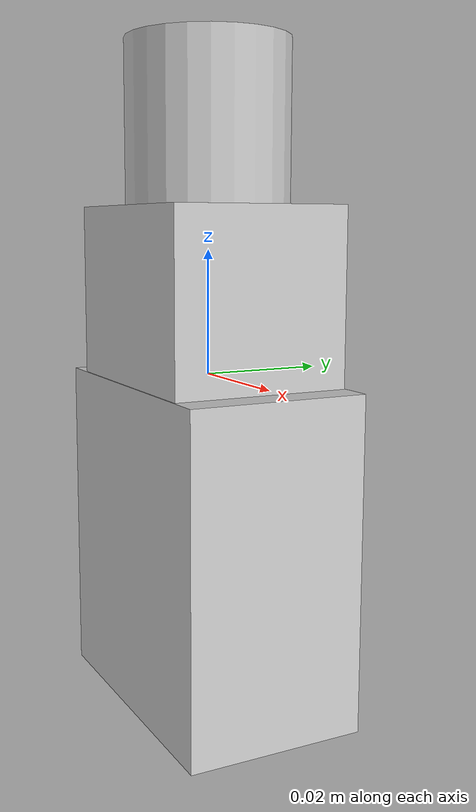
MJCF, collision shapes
<mujoco model="bbq_sauce">
  <asset>
  <texture file="meshes/bbq_sauce/texture_map.png" name="tex-bbq_sauce" type="2d" />
  <material name="bbq_sauce" reflectance="0.5" texrepeat="1 1" texture="tex-bbq_sauce" texuniform="false" />
  <mesh file="meshes/bbq_sauce/visual/bbq_sauce_vis.msh" name="bbq_sauce_vis" scale="0.0075 0.0075 0.0075" /></asset>
  <worldbody>
    <body>
      <body name="object">
      <geom solimp="0.998 0.998 0.001" solref="0.001 1" density="100" friction="0.95 0.3 0.1" type="mesh" mesh="bbq_sauce_vis" conaffinity="0" contype="0" group="1" material="bbq_sauce" /><geom solimp="0.998 0.998 0.001" solref="0.001 1" density="100" friction="0.95 0.3 0.1" type="box" pos="0.00000 0.00000 -0.02782" quat="0.00000 0.00530 0.00530 0.00000" size="0.01447 0.02349 0.02682" group="0" rgba="0.8 0.8 0.8 0.3" /><geom solimp="0.998 0.998 0.001" solref="0.001 1" density="100" friction="0.95 0.3 0.1" type="box" pos="-0.00000 -0.00000 0.01233" quat="0.00375 0.00375 -0.00375 -0.00375" size="0.01428 0.01459 0.01810" group="0" rgba="0.8 0.8 0.8 0.3" /><geom solimp="0.998 0.998 0.001" solref="0.001 1" density="100" friction="0.95 0.3 0.1" type="cylinder" pos="-0.00000 -0.00000 0.03910" quat="0.00000 -0.00036 0.00749 -0.00000" size="0.01310 0.01336" group="0" rgba="0.8 0.8 0.8 0.3" /></body>
      <site rgba="0 0 0 0" size="0.005" pos="0 0 -0.06" name="bottom_site" />
      <site rgba="0 0 0 0" size="0.005" pos="0 0 0.04" name="top_site" />
      <site rgba="0 0 0 0" size="0.005" pos="0.025 0.025 0" name="horizontal_radius_site" />
    </body>
  </worldbody>
</mujoco>
